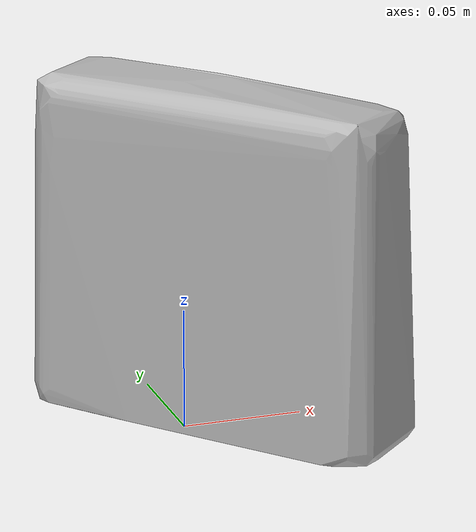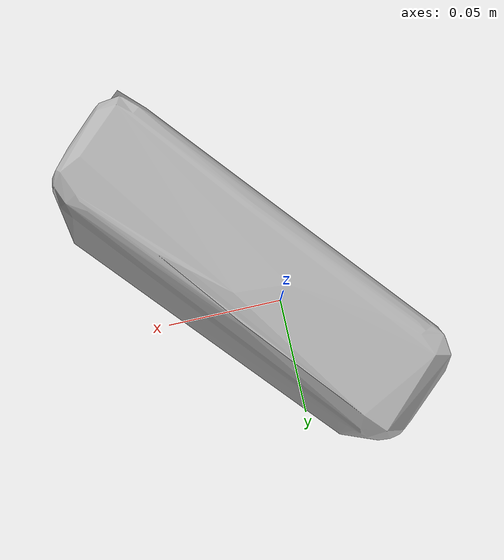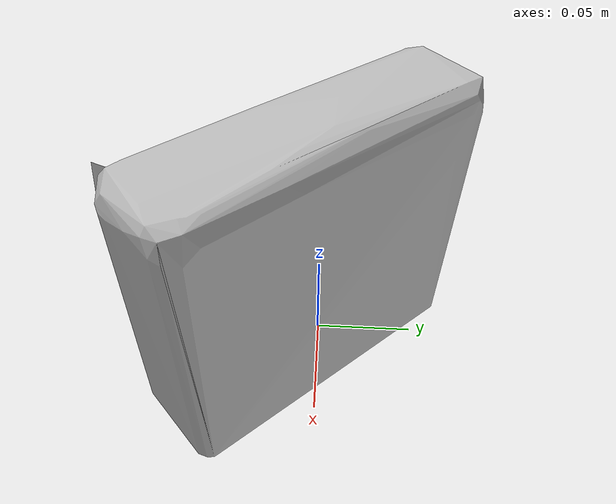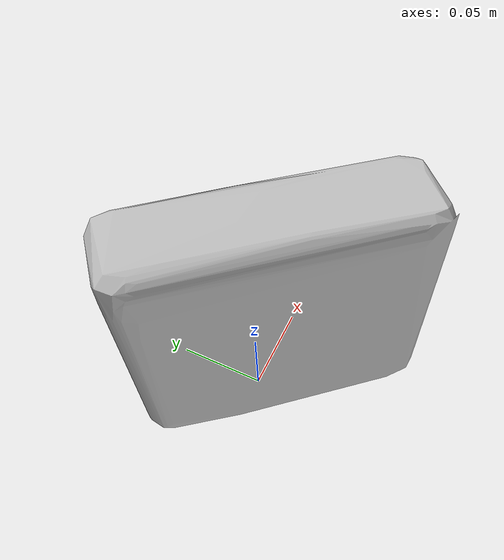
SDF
<?xml version='1.0'?>
<sdf version="1.4">
  <model name="nature_valley_sweet_and_salty_nut_peanut">
    <static>false</static>
    <link name="link">
      <inertial>
        <pose>0.013891106173537358 -0.005410695368069913 0.07237178647815644 1.5136473983151453 -0.008882841609167648 -2.4348037203143678</pose>
        <mass>0.10569715117657806</mass>
        <inertia>
          <ixx>0.00037132692085824415</ixx>
          <ixy>-2.892065923885909e-21</ixy>
          <ixz>5.959487699167158e-20</ixz>
          <iyy>0.00022978060172606637</iyy>
          <iyz>-2.89343303312574e-22</iyz>
          <izz>0.00018473385000554053</izz>
        </inertia>
      </inertial>
      <collision name="collision">
        <geometry>
          <mesh>
            <!-- Use a downsampled mesh for collisions -->
            <uri>model:///nature_valley_sweet_and_salty_nut_peanut/nature_valley_sweet_and_salty_nut_peanut_250_collision.obj</uri>
	        </mesh>
        </geometry>
        <surface>
      </surface>
      </collision>
      <visual name="visual">
        <geometry>
          <mesh>
            <uri>model:///nature_valley_sweet_and_salty_nut_peanut/optimized_tsdf_texture_mapped_mesh.obj</uri>
	        </mesh>
        </geometry>
        <material>
          <script>
            <uri>model:///nature_valley_sweet_and_salty_nut_peanut/nature_valley_sweet_and_salty_nut_peanut.material</uri>
            <name>nature_valley_sweet_and_salty_nut_peanut</name>
          </script>
        </material>
      </visual>
    </link>
  </model>
</sdf>
